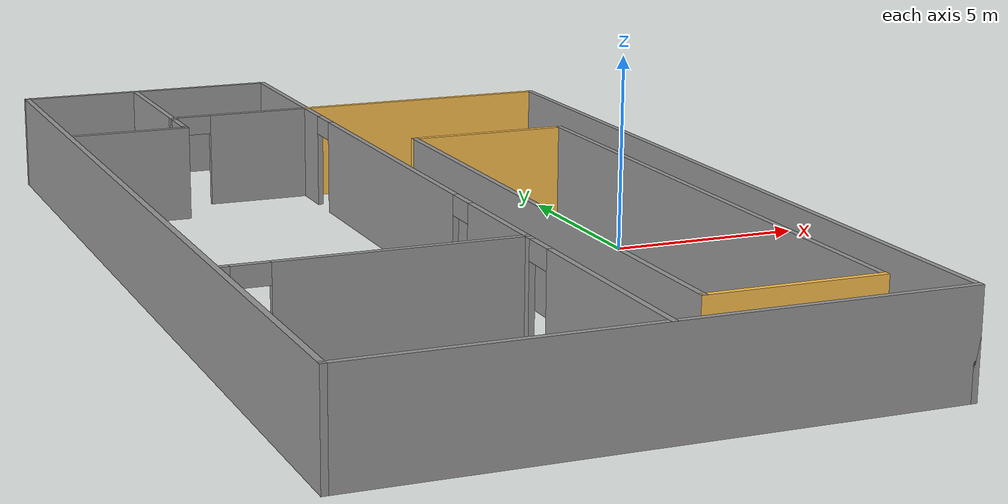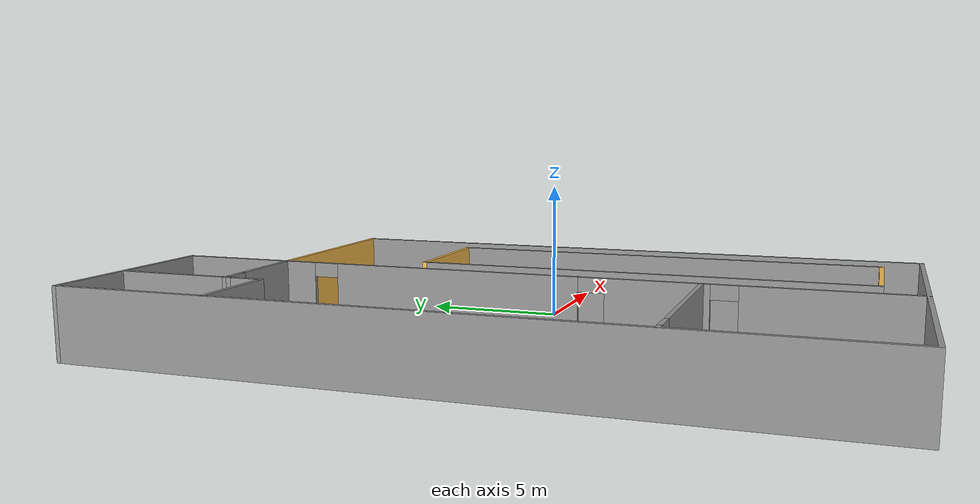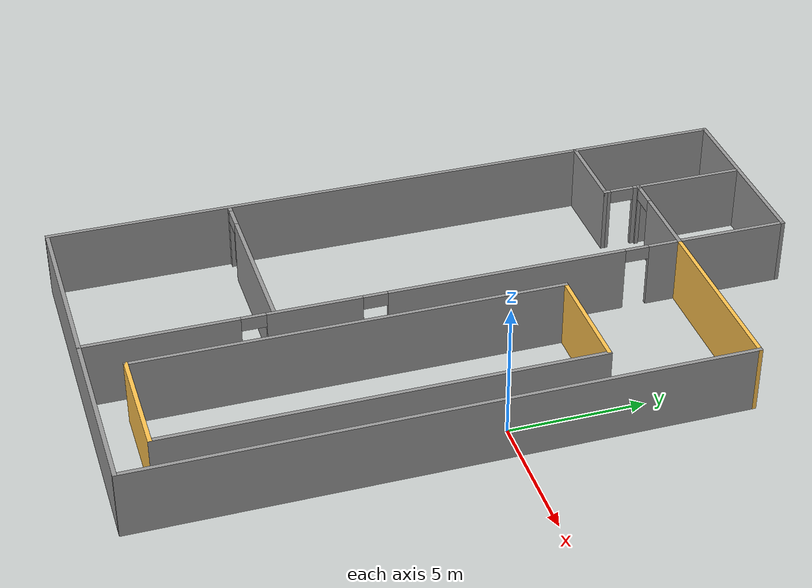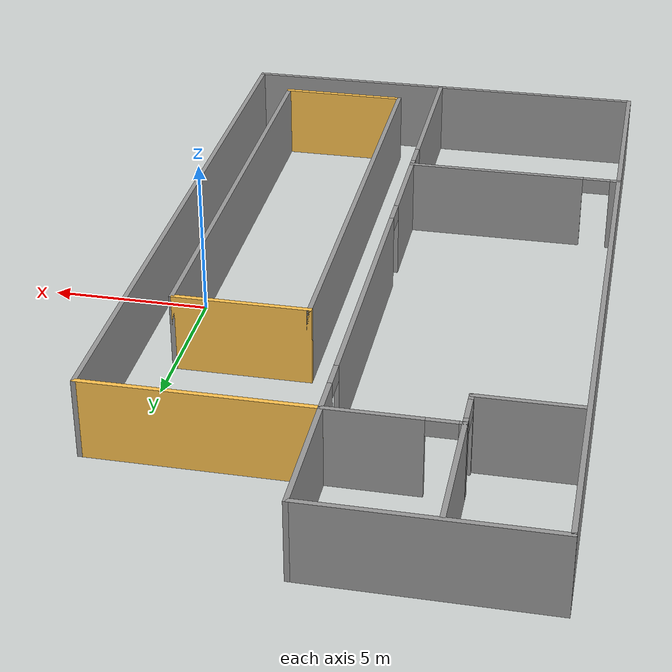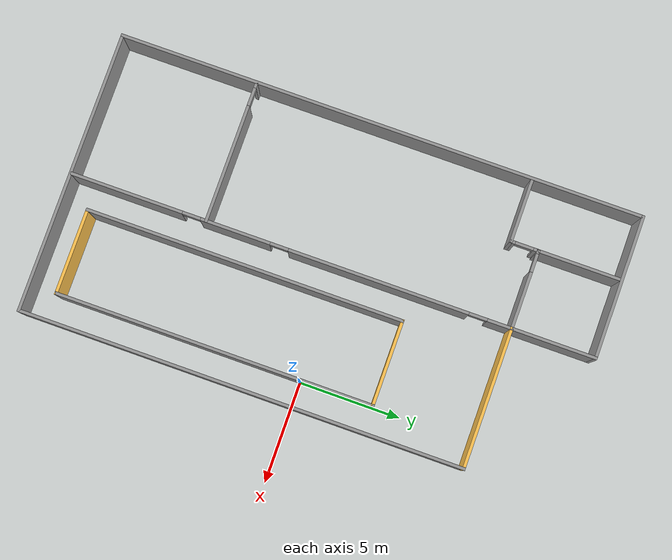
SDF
<?xml version='1.0'?>
<sdf version='1.7'>
  <model name='1st_floor'>
    <pose>-5.64811 -0.401523 0 0 -0 0</pose>
    <link name='Wall_149'>
      <collision name='Wall_149_Collision'>
        <geometry>
          <box>
            <size>26 0.15 2.5</size>
          </box>
        </geometry>
        <pose>0 0 1.25 0 -0 0</pose>
      </collision>
      <visual name='Wall_149_Visual'>
        <pose>0 0 1.25 0 -0 0</pose>
        <geometry>
          <box>
            <size>26 0.15 2.5</size>
          </box>
        </geometry>
        <material>
          <script>
            <uri>file://media/materials/scripts/gazebo.material</uri>
            <name>Gazebo/Grey</name>
          </script>
          <ambient>1 1 1 1</ambient>
        </material>
        <meta>
          <layer>0</layer>
        </meta>
      </visual>
      <pose>-6.925 -0.049999 0 0 -0 -1.5708</pose>
    </link>
    <link name='Wall_156'>
      <collision name='Wall_156_Collision'>
        <geometry>
          <box>
            <size>14 0.15 2.5</size>
          </box>
        </geometry>
        <pose>0 0 1.25 0 -0 0</pose>
      </collision>
      <visual name='Wall_156_Visual'>
        <pose>0 0 1.25 0 -0 0</pose>
        <geometry>
          <box>
            <size>14 0.15 2.5</size>
          </box>
        </geometry>
        <material>
          <script>
            <uri>file://media/materials/scripts/gazebo.material</uri>
            <name>Gazebo/Grey</name>
          </script>
          <ambient>1 1 1 1</ambient>
        </material>
        <meta>
          <layer>0</layer>
        </meta>
      </visual>
      <pose>0 -12.975 0 0 -0 0</pose>
    </link>
    <link name='Wall_158'>
      <collision name='Wall_158_Collision'>
        <geometry>
          <box>
            <size>22 0.15 2.5</size>
          </box>
        </geometry>
        <pose>0 0 1.25 0 -0 0</pose>
      </collision>
      <visual name='Wall_158_Visual'>
        <pose>0 0 1.25 0 -0 0</pose>
        <geometry>
          <box>
            <size>22 0.15 2.5</size>
          </box>
        </geometry>
        <material>
          <script>
            <uri>file://media/materials/scripts/gazebo.material</uri>
            <name>Gazebo/Grey</name>
          </script>
          <ambient>1 1 1 1</ambient>
        </material>
        <meta>
          <layer>0</layer>
        </meta>
      </visual>
      <pose>6.925 -2.05 0 0 -0 1.5708</pose>
    </link>
    <link name='Wall_160'>
      <collision name='Wall_160_Collision'>
        <geometry>
          <box>
            <size>7 0.15 2.5</size>
          </box>
        </geometry>
        <pose>0 0 1.25 0 -0 0</pose>
      </collision>
      <visual name='Wall_160_Visual'>
        <pose>0 0 1.25 0 -0 0</pose>
        <geometry>
          <box>
            <size>7 0.15 2.5</size>
          </box>
        </geometry>
        <material>
          <script>
            <uri>file://media/materials/scripts/gazebo.material</uri>
            <name>Gazebo/Grey</name>
          </script>
          <ambient>1 0.764706 0.305882 1</ambient>
        </material>
        <meta>
          <layer>0</layer>
        </meta>
      </visual>
      <pose>3.5 8.875 0 0 -0 3.14159</pose>
    </link>
    <link name='Wall_162'>
      <collision name='Wall_162_Collision'>
        <geometry>
          <box>
            <size>4.25 0.15 2.5</size>
          </box>
        </geometry>
        <pose>0 0 1.25 0 -0 0</pose>
      </collision>
      <visual name='Wall_162_Visual'>
        <pose>0 0 1.25 0 -0 0</pose>
        <geometry>
          <box>
            <size>4.25 0.15 2.5</size>
          </box>
        </geometry>
        <material>
          <script>
            <uri>file://media/materials/scripts/gazebo.material</uri>
            <name>Gazebo/Grey</name>
          </script>
          <ambient>1 1 1 1</ambient>
        </material>
        <meta>
          <layer>0</layer>
        </meta>
      </visual>
      <pose>0.075 10.925 0 0 -0 1.5708</pose>
    </link>
    <link name='Wall_163'>
      <collision name='Wall_163_Collision'>
        <geometry>
          <box>
            <size>7.15 0.15 2.5</size>
          </box>
        </geometry>
        <pose>0 0 1.25 0 -0 0</pose>
      </collision>
      <visual name='Wall_163_Visual'>
        <pose>0 0 1.25 0 -0 0</pose>
        <geometry>
          <box>
            <size>7.15 0.15 2.5</size>
          </box>
        </geometry>
        <material>
          <script>
            <uri>file://media/materials/scripts/gazebo.material</uri>
            <name>Gazebo/Grey</name>
          </script>
          <ambient>1 1 1 1</ambient>
        </material>
        <meta>
          <layer>0</layer>
        </meta>
      </visual>
      <pose>-3.425 12.975 0 0 -0 3.14159</pose>
    </link>
    <link name='Wall_165'>
      <pose>0.075 -2.05 0 0 -0 -1.5708</pose>
      <visual name='Wall_165_Visual_0'>
        <pose>-10.364 0 1.25 0 -0 0</pose>
        <geometry>
          <box>
            <size>1.27193 0.15 2.5</size>
          </box>
        </geometry>
        <material>
          <script>
            <uri>file://media/materials/scripts/gazebo.material</uri>
            <name>Gazebo/Grey</name>
          </script>
          <ambient>1 1 1 1</ambient>
        </material>
        <meta>
          <layer>0</layer>
        </meta>
      </visual>
      <collision name='Wall_165_Collision_0'>
        <geometry>
          <box>
            <size>1.27193 0.15 2.5</size>
          </box>
        </geometry>
        <pose>-10.364 0 1.25 0 -0 0</pose>
      </collision>
      <visual name='Wall_165_Visual_1'>
        <pose>-4.37057 0 1.25 0 -0 0</pose>
        <geometry>
          <box>
            <size>8.91501 0.15 2.5</size>
          </box>
        </geometry>
        <material>
          <script>
            <uri>file://media/materials/scripts/gazebo.material</uri>
            <name>Gazebo/Grey</name>
          </script>
          <ambient>1 1 1 1</ambient>
        </material>
        <meta>
          <layer>0</layer>
        </meta>
      </visual>
      <collision name='Wall_165_Collision_1'>
        <geometry>
          <box>
            <size>8.91501 0.15 2.5</size>
          </box>
        </geometry>
        <pose>-4.37057 0 1.25 0 -0 0</pose>
      </collision>
      <visual name='Wall_165_Visual_2'>
        <pose>2.71557 0 1.25 0 -0 0</pose>
        <geometry>
          <box>
            <size>3.45727 0.15 2.5</size>
          </box>
        </geometry>
        <material>
          <script>
            <uri>file://media/materials/scripts/gazebo.material</uri>
            <name>Gazebo/Grey</name>
          </script>
          <ambient>1 1 1 1</ambient>
        </material>
        <meta>
          <layer>0</layer>
        </meta>
      </visual>
      <collision name='Wall_165_Collision_2'>
        <geometry>
          <box>
            <size>3.45727 0.15 2.5</size>
          </box>
        </geometry>
        <pose>2.71557 0 1.25 0 -0 0</pose>
      </collision>
      <visual name='Wall_165_Visual_3'>
        <pose>8.1721 0 1.25 0 -0 0</pose>
        <geometry>
          <box>
            <size>5.65579 0.15 2.5</size>
          </box>
        </geometry>
        <material>
          <script>
            <uri>file://media/materials/scripts/gazebo.material</uri>
            <name>Gazebo/Grey</name>
          </script>
          <ambient>1 1 1 1</ambient>
        </material>
        <meta>
          <layer>0</layer>
        </meta>
      </visual>
      <collision name='Wall_165_Collision_3'>
        <geometry>
          <box>
            <size>5.65579 0.15 2.5</size>
          </box>
        </geometry>
        <pose>8.1721 0 1.25 0 -0 0</pose>
      </collision>
      <visual name='Wall_165_Visual_4'>
        <pose>-9.27807 0 2.25 0 -0 0</pose>
        <geometry>
          <box>
            <size>0.9 0.15 0.5</size>
          </box>
        </geometry>
        <material>
          <script>
            <uri>file://media/materials/scripts/gazebo.material</uri>
            <name>Gazebo/Grey</name>
          </script>
          <ambient>1 1 1 1</ambient>
        </material>
        <meta>
          <layer>0</layer>
        </meta>
      </visual>
      <collision name='Wall_165_Collision_4'>
        <geometry>
          <box>
            <size>0.9 0.15 0.5</size>
          </box>
        </geometry>
        <pose>-9.27807 0 2.25 0 -0 0</pose>
      </collision>
      <visual name='Wall_165_Visual_5'>
        <pose>0.53694 0 2.25 0 -0 0</pose>
        <geometry>
          <box>
            <size>0.9 0.15 0.5</size>
          </box>
        </geometry>
        <material>
          <script>
            <uri>file://media/materials/scripts/gazebo.material</uri>
            <name>Gazebo/Grey</name>
          </script>
          <ambient>1 1 1 1</ambient>
        </material>
        <meta>
          <layer>0</layer>
        </meta>
      </visual>
      <collision name='Wall_165_Collision_5'>
        <geometry>
          <box>
            <size>0.9 0.15 0.5</size>
          </box>
        </geometry>
        <pose>0.53694 0 2.25 0 -0 0</pose>
      </collision>
      <visual name='Wall_165_Visual_6'>
        <pose>4.89421 0 2.25 0 -0 0</pose>
        <geometry>
          <box>
            <size>0.9 0.15 0.5</size>
          </box>
        </geometry>
        <material>
          <script>
            <uri>file://media/materials/scripts/gazebo.material</uri>
            <name>Gazebo/Grey</name>
          </script>
          <ambient>1 1 1 1</ambient>
        </material>
        <meta>
          <layer>0</layer>
        </meta>
      </visual>
      <collision name='Wall_165_Collision_6'>
        <geometry>
          <box>
            <size>0.9 0.15 0.5</size>
          </box>
        </geometry>
        <pose>4.89421 0 2.25 0 -0 0</pose>
      </collision>
    </link>
    <link name='Wall_167'>
      <pose>-1.85 8.875 0 0 -0 3.14159</pose>
      <visual name='Wall_167_Visual_0'>
        <pose>-0.563372 0 1.25 0 -0 0</pose>
        <geometry>
          <box>
            <size>2.87326 0.15 2.5</size>
          </box>
        </geometry>
        <material>
          <script>
            <uri>file://media/materials/scripts/gazebo.material</uri>
            <name>Gazebo/Grey</name>
          </script>
          <ambient>1 1 1 1</ambient>
        </material>
        <meta>
          <layer>0</layer>
        </meta>
      </visual>
      <collision name='Wall_167_Collision_0'>
        <geometry>
          <box>
            <size>2.87326 0.15 2.5</size>
          </box>
        </geometry>
        <pose>-0.563372 0 1.25 0 -0 0</pose>
      </collision>
      <visual name='Wall_167_Visual_1'>
        <pose>1.88663 0 1.25 0 -0 0</pose>
        <geometry>
          <box>
            <size>0.226744 0.15 2.5</size>
          </box>
        </geometry>
        <material>
          <script>
            <uri>file://media/materials/scripts/gazebo.material</uri>
            <name>Gazebo/Grey</name>
          </script>
          <ambient>1 1 1 1</ambient>
        </material>
        <meta>
          <layer>0</layer>
        </meta>
      </visual>
      <collision name='Wall_167_Collision_1'>
        <geometry>
          <box>
            <size>0.226744 0.15 2.5</size>
          </box>
        </geometry>
        <pose>1.88663 0 1.25 0 -0 0</pose>
      </collision>
      <visual name='Wall_167_Visual_2'>
        <pose>1.32326 0 2.25 0 -0 0</pose>
        <geometry>
          <box>
            <size>0.9 0.15 0.5</size>
          </box>
        </geometry>
        <material>
          <script>
            <uri>file://media/materials/scripts/gazebo.material</uri>
            <name>Gazebo/Grey</name>
          </script>
          <ambient>1 1 1 1</ambient>
        </material>
        <meta>
          <layer>0</layer>
        </meta>
      </visual>
      <collision name='Wall_167_Collision_2'>
        <geometry>
          <box>
            <size>0.9 0.15 0.5</size>
          </box>
        </geometry>
        <pose>1.32326 0 2.25 0 -0 0</pose>
      </collision>
    </link>
    <link name='Wall_169'>
      <collision name='Wall_169_Collision'>
        <geometry>
          <box>
            <size>4.125 0.15 2.5</size>
          </box>
        </geometry>
        <pose>0 0 1.25 0 -0 0</pose>
      </collision>
      <visual name='Wall_169_Visual'>
        <pose>0 0 1.25 0 -0 0</pose>
        <geometry>
          <box>
            <size>4.125 0.15 2.5</size>
          </box>
        </geometry>
        <material>
          <script>
            <uri>file://media/materials/scripts/gazebo.material</uri>
            <name>Gazebo/Grey</name>
          </script>
          <ambient>1 1 1 1</ambient>
        </material>
        <meta>
          <layer>0</layer>
        </meta>
      </visual>
      <pose>-3.775 10.8625 0 0 -0 1.5708</pose>
    </link>
    <link name='Wall_171'>
      <pose>-3.775 8.2 0 0 -0 -1.5708</pose>
      <visual name='Wall_171_Visual_0'>
        <pose>-0.590407 0 1.25 0 -0 0</pose>
        <geometry>
          <box>
            <size>0.319186 0.15 2.5</size>
          </box>
        </geometry>
        <material>
          <script>
            <uri>file://media/materials/scripts/gazebo.material</uri>
            <name>Gazebo/Grey</name>
          </script>
          <ambient>1 1 1 1</ambient>
        </material>
        <meta>
          <layer>0</layer>
        </meta>
      </visual>
      <collision name='Wall_171_Collision_0'>
        <geometry>
          <box>
            <size>0.319186 0.15 2.5</size>
          </box>
        </geometry>
        <pose>-0.590407 0 1.25 0 -0 0</pose>
      </collision>
      <visual name='Wall_171_Visual_1'>
        <pose>0.609593 0 1.25 0 -0 0</pose>
        <geometry>
          <box>
            <size>0.280814 0.15 2.5</size>
          </box>
        </geometry>
        <material>
          <script>
            <uri>file://media/materials/scripts/gazebo.material</uri>
            <name>Gazebo/Grey</name>
          </script>
          <ambient>1 1 1 1</ambient>
        </material>
        <meta>
          <layer>0</layer>
        </meta>
      </visual>
      <collision name='Wall_171_Collision_1'>
        <geometry>
          <box>
            <size>0.280814 0.15 2.5</size>
          </box>
        </geometry>
        <pose>0.609593 0 1.25 0 -0 0</pose>
      </collision>
      <visual name='Wall_171_Visual_2'>
        <pose>0.019186 0 2.25 0 -0 0</pose>
        <geometry>
          <box>
            <size>0.9 0.15 0.5</size>
          </box>
        </geometry>
        <material>
          <script>
            <uri>file://media/materials/scripts/gazebo.material</uri>
            <name>Gazebo/Grey</name>
          </script>
          <ambient>1 1 1 1</ambient>
        </material>
        <meta>
          <layer>0</layer>
        </meta>
      </visual>
      <collision name='Wall_171_Collision_2'>
        <geometry>
          <box>
            <size>0.9 0.15 0.5</size>
          </box>
        </geometry>
        <pose>0.019186 0 2.25 0 -0 0</pose>
      </collision>
    </link>
    <link name='Wall_172'>
      <collision name='Wall_172_Collision'>
        <geometry>
          <box>
            <size>3.25 0.15 2.5</size>
          </box>
        </geometry>
        <pose>0 0 1.25 0 -0 0</pose>
      </collision>
      <visual name='Wall_172_Visual'>
        <pose>0 0 1.25 0 -0 0</pose>
        <geometry>
          <box>
            <size>3.25 0.15 2.5</size>
          </box>
        </geometry>
        <material>
          <script>
            <uri>file://media/materials/scripts/gazebo.material</uri>
            <name>Gazebo/Grey</name>
          </script>
          <ambient>1 1 1 1</ambient>
        </material>
        <meta>
          <layer>0</layer>
        </meta>
      </visual>
      <pose>-5.325 7.525 0 0 -0 3.14159</pose>
    </link>
    <link name='Wall_175'>
      <pose>-3.4182 -6.2136 0 0 -0 0</pose>
      <visual name='Wall_175_Visual_0'>
        <pose>-3.39023 0 1.25 0 -0 0</pose>
        <geometry>
          <box>
            <size>0.344544 0.15 2.5</size>
          </box>
        </geometry>
        <material>
          <script>
            <uri>file://media/materials/scripts/gazebo.material</uri>
            <name>Gazebo/Grey</name>
          </script>
          <ambient>1 1 1 1</ambient>
        </material>
        <meta>
          <layer>0</layer>
        </meta>
      </visual>
      <collision name='Wall_175_Collision_0'>
        <geometry>
          <box>
            <size>0.344544 0.15 2.5</size>
          </box>
        </geometry>
        <pose>-3.39023 0 1.25 0 -0 0</pose>
      </collision>
      <visual name='Wall_175_Visual_1'>
        <pose>0.622272 0 1.25 0 -0 0</pose>
        <geometry>
          <box>
            <size>5.88046 0.15 2.5</size>
          </box>
        </geometry>
        <material>
          <script>
            <uri>file://media/materials/scripts/gazebo.material</uri>
            <name>Gazebo/Grey</name>
          </script>
          <ambient>1 1 1 1</ambient>
        </material>
        <meta>
          <layer>0</layer>
        </meta>
      </visual>
      <collision name='Wall_175_Collision_1'>
        <geometry>
          <box>
            <size>5.88046 0.15 2.5</size>
          </box>
        </geometry>
        <pose>0.622272 0 1.25 0 -0 0</pose>
      </collision>
      <visual name='Wall_175_Visual_2'>
        <pose>-2.76796 0 2.25 0 -0 0</pose>
        <geometry>
          <box>
            <size>0.9 0.15 0.5</size>
          </box>
        </geometry>
        <material>
          <script>
            <uri>file://media/materials/scripts/gazebo.material</uri>
            <name>Gazebo/Grey</name>
          </script>
          <ambient>1 1 1 1</ambient>
        </material>
        <meta>
          <layer>0</layer>
        </meta>
      </visual>
      <collision name='Wall_175_Collision_2'>
        <geometry>
          <box>
            <size>0.9 0.15 0.5</size>
          </box>
        </geometry>
        <pose>-2.76796 0 2.25 0 -0 0</pose>
      </collision>
    </link>
    <link name='Wall_181'>
      <collision name='Wall_181_Collision'>
        <geometry>
          <box>
            <size>15.75 0.15 2.5</size>
          </box>
        </geometry>
        <pose>0 0 1.25 0 -0 0</pose>
      </collision>
      <visual name='Wall_181_Visual'>
        <pose>0 0 1.25 0 -0 0</pose>
        <geometry>
          <box>
            <size>15.75 0.15 2.5</size>
          </box>
        </geometry>
        <material>
          <script>
            <uri>file://media/materials/scripts/gazebo.material</uri>
            <name>Gazebo/Grey</name>
          </script>
          <ambient>1 1 1 1</ambient>
        </material>
        <meta>
          <layer>0</layer>
        </meta>
      </visual>
      <pose>1.43899 -3.81868 0 0 -0 -1.5708</pose>
    </link>
    <link name='Wall_184'>
      <collision name='Wall_184_Collision'>
        <geometry>
          <box>
            <size>4.31083 0.15 2.5</size>
          </box>
        </geometry>
        <pose>0 0 1.25 0 -0 0</pose>
      </collision>
      <visual name='Wall_184_Visual'>
        <pose>0 0 1.25 0 -0 0</pose>
        <geometry>
          <box>
            <size>4.31083 0.15 2.5</size>
          </box>
        </geometry>
        <material>
          <script>
            <uri>file://media/materials/scripts/gazebo.material</uri>
            <name>Gazebo/Grey</name>
          </script>
          <ambient>1 0.764706 0.305882 1</ambient>
        </material>
        <meta>
          <layer>0</layer>
        </meta>
      </visual>
      <pose>3.51941 -11.6187 0 0 -0 0</pose>
    </link>
    <link name='Wall_189'>
      <collision name='Wall_189_Collision'>
        <geometry>
          <box>
            <size>4.25 0.15 2.5</size>
          </box>
        </geometry>
        <pose>0 0 1.25 0 -0 0</pose>
      </collision>
      <visual name='Wall_189_Visual'>
        <pose>0 0 1.25 0 -0 0</pose>
        <geometry>
          <box>
            <size>4.25 0.15 2.5</size>
          </box>
        </geometry>
        <material>
          <script>
            <uri>file://media/materials/scripts/gazebo.material</uri>
            <name>Gazebo/Grey</name>
          </script>
          <ambient>1 0.764706 0.305882 1</ambient>
        </material>
        <meta>
          <layer>0</layer>
        </meta>
      </visual>
      <pose>3.48899 3.98132 0 0 -0 0</pose>
    </link>
    <link name='Wall_195'>
      <collision name='Wall_195_Collision'>
        <geometry>
          <box>
            <size>15.75 0.15 2.5</size>
          </box>
        </geometry>
        <pose>0 0 1.25 0 -0 0</pose>
      </collision>
      <visual name='Wall_195_Visual'>
        <pose>0 0 1.25 0 -0 0</pose>
        <geometry>
          <box>
            <size>15.75 0.15 2.5</size>
          </box>
        </geometry>
        <material>
          <script>
            <uri>file://media/materials/scripts/gazebo.material</uri>
            <name>Gazebo/Grey</name>
          </script>
          <ambient>1 1 1 1</ambient>
        </material>
        <meta>
          <layer>0</layer>
        </meta>
      </visual>
      <pose>5.59982 -3.81868 0 0 -0 1.5708</pose>
    </link>
    <static>1</static>
  </model>
</sdf>
